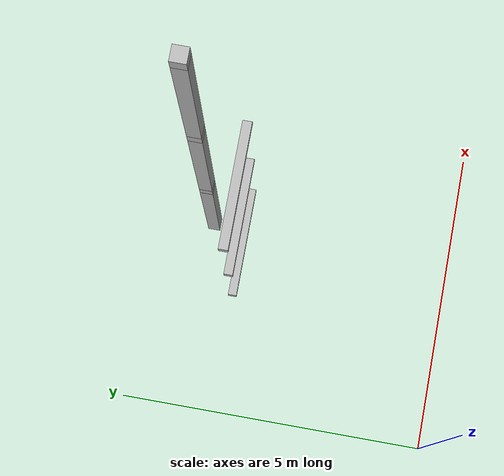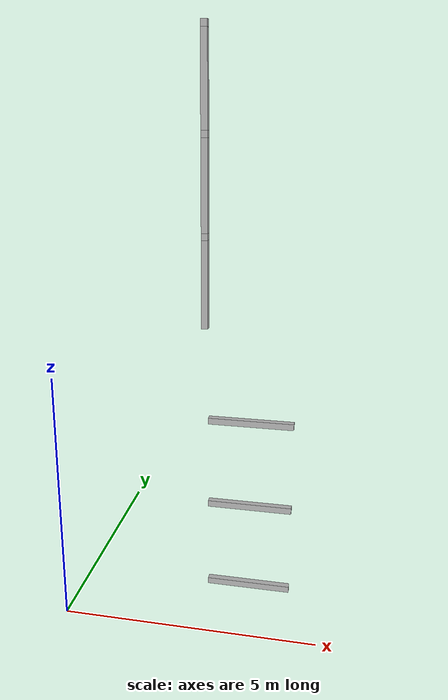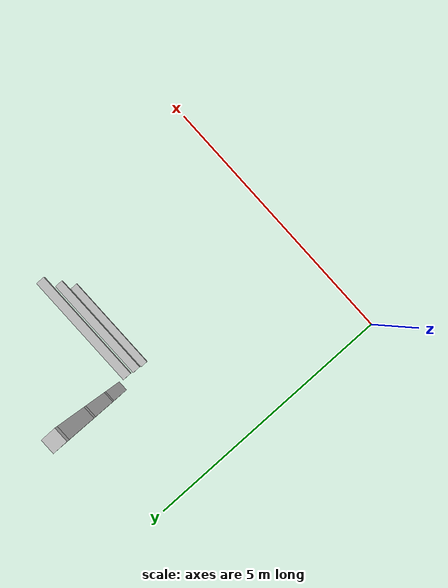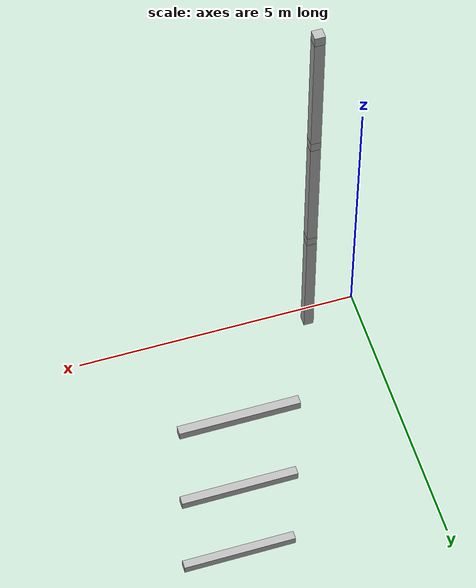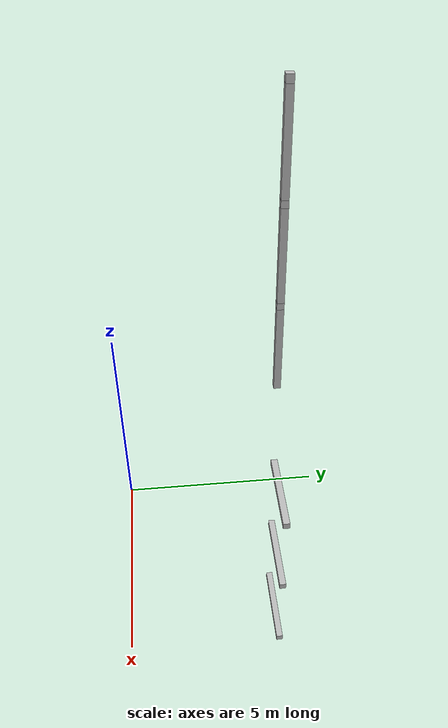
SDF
<sdf version="1.7">
 <world name="default">
  <model name="orthogonal_747_2.000.15_TS">
   <static>1</static>
   <link name="x_link_0_4_4">
    <inertial>
     <mass>1</mass>
     <inertia>
      <ixx>0.166667</ixx>
      <ixy>0</ixy>
      <ixz>0</ixz>
      <iyy>0.166667</iyy>
      <iyz>0</iyz>
      <izz>0.166667</izz>
     </inertia>
    </inertial>
    <pose>9.675 8.6 1.075 0 -0 0</pose>
    <visual name="visual_0">
     <laser_retro>701</laser_retro>
     <geometry><box><size>2 1e-06 0.15</size></box></geometry>
     <material>
      <script><name>Gazebo/Grey</name><uri>file://media/materials/scripts/gazebo.material</uri></script>
      <shader type="pixel"><normal_map>__default__</normal_map></shader>
      <ambient>0.678 0.498 0.659 1</ambient>
      <diffuse>0.7 0.7 0.7 1</diffuse>
      <specular>0.01 0.01 0.01 1</specular>
      <emissive>0 0 0 1</emissive>
     </material>
     <pose>0 -0.075 0 0 -0 0</pose>
     <transparency>1</transparency>
    </visual>
    <visual name="visual_1">
     <laser_retro>702</laser_retro>
     <geometry><box><size>2 1e-06 0.15</size></box></geometry>
     <material>
      <script><name>Gazebo/Grey</name><uri>file://media/materials/scripts/gazebo.material</uri></script>
      <shader type="pixel"><normal_map>__default__</normal_map></shader>
      <ambient>0.447 0.624 0.812 1</ambient>
      <diffuse>0.7 0.7 0.7 1</diffuse>
      <specular>0.01 0.01 0.01 1</specular>
      <emissive>0 0 0 1</emissive>
     </material>
     <pose>0 0.075 0 0 -0 0</pose>
     <transparency>1</transparency>
    </visual>
    <visual name="visual_2">
     <laser_retro>703</laser_retro>
     <geometry><box><size>2 0.15 1e-06</size></box></geometry>
     <material>
      <script><name>Gazebo/Grey</name><uri>file://media/materials/scripts/gazebo.material</uri></script>
      <shader type="pixel"><normal_map>__default__</normal_map></shader>
      <ambient>0.988 0.686 0.243 1</ambient>
      <diffuse>0.7 0.7 0.7 1</diffuse>
      <specular>0.01 0.01 0.01 1</specular>
      <emissive>0 0 0 1</emissive>
     </material>
     <pose>0 0 -0.075 0 -0 0</pose>
     <transparency>1</transparency>
    </visual>
    <visual name="visual_3">
     <laser_retro>704</laser_retro>
     <geometry><box><size>1e-06 0.15 0.15</size></box></geometry>
     <material>
      <script><name>Gazebo/Grey</name><uri>file://media/materials/scripts/gazebo.material</uri></script>
      <shader type="pixel"><normal_map>__default__</normal_map></shader>
      <ambient>0.988 0.914 0.31 1</ambient>
      <diffuse>0.7 0.7 0.7 1</diffuse>
      <specular>0.01 0.01 0.01 1</specular>
      <emissive>0 0 0 1</emissive>
     </material>
     <pose>1 0 0 0 -0 0</pose>
     <transparency>1</transparency>
    </visual>
    <visual name="visual_4">
     <laser_retro>705</laser_retro>
     <geometry><box><size>2 0.15 1e-06</size></box></geometry>
     <material>
      <script><name>Gazebo/Grey</name><uri>file://media/materials/scripts/gazebo.material</uri></script>
      <shader type="pixel"><normal_map>__default__</normal_map></shader>
      <ambient>0.937 0.161 0.161 1</ambient>
      <diffuse>0.7 0.7 0.7 1</diffuse>
      <specular>0.01 0.01 0.01 1</specular>
      <emissive>0 0 0 1</emissive>
     </material>
     <pose>0 0 0.075 0 -0 0</pose>
     <transparency>1</transparency>
    </visual>
    <visual name="visual_5">
     <laser_retro>706</laser_retro>
     <geometry><box><size>1e-06 0.15 0.15</size></box></geometry>
     <material>
      <script><name>Gazebo/Grey</name><uri>file://media/materials/scripts/gazebo.material</uri></script>
      <shader type="pixel"><normal_map>__default__</normal_map></shader>
      <ambient>0.541 0.886 0.204 1</ambient>
      <diffuse>0.7 0.7 0.7 1</diffuse>
      <specular>0.01 0.01 0.01 1</specular>
      <emissive>0 0 0 1</emissive>
     </material>
     <pose>-1 0 0 0 -0 0</pose>
     <transparency>1</transparency>
    </visual>
    <visual name="visual_texture">
     <geometry><box><size>1.9998 0.149985 0.149985</size></box></geometry>
     <material>
      <script>
       <uri>model://BASE_MODELS/simple_block_v2_textured/materials/scripts</uri>
       <uri>model://BASE_MODELS/simple_block_v2_textured/materials/textures</uri>
       <name>metal</name>
      </script>
     </material>
     <laser_retro>707</laser_retro>
    </visual>
    <collision name="collision">
     <geometry><box><size>2 0.15 0.15</size></box></geometry>
     <surface>
      <friction>
       <ode><mu>1</mu><mu2>1</mu2><fdir1>0 0 0</fdir1><slip1>0</slip1><slip2>0</slip2></ode>
       <torsional>
        <coefficient>1</coefficient>
        <patch_radius>0</patch_radius>
        <surface_radius>0</surface_radius>
        <use_patch_radius>1</use_patch_radius>
        <ode><slip>0</slip></ode>
       </torsional>
      </friction>
      <bounce><restitution_coefficient>0</restitution_coefficient><threshold>1e+06</threshold></bounce>
      <contact>
       <collide_without_contact>0</collide_without_contact>
       <collide_without_contact_bitmask>1</collide_without_contact_bitmask>
       <collide_bitmask>1</collide_bitmask>
       <ode>
        <soft_cfm>0</soft_cfm>
        <soft_erp>0.2</soft_erp>
        <kp>1e+13</kp>
        <kd>1</kd>
        <max_vel>0.01</max_vel>
        <min_depth>0</min_depth>
       </ode>
       <bullet>
        <split_impulse>1</split_impulse>
        <split_impulse_penetration_threshold>-0.01</split_impulse_penetration_threshold>
        <soft_cfm>0</soft_cfm>
        <soft_erp>0.2</soft_erp>
        <kp>1e+13</kp>
        <kd>1</kd>
       </bullet>
      </contact>
     </surface>
    </collision>
   </link>
   <link name="x_link_1_4_4">
    <inertial>
     <mass>1</mass>
     <inertia>
      <ixx>0.166667</ixx>
      <ixy>0</ixy>
      <ixz>0</ixz>
      <iyy>0.166667</iyy>
      <iyz>0</iyz>
      <izz>0.166667</izz>
     </inertia>
    </inertial>
    <pose>9.675 8.6 3.225 0 -0 0</pose>
    <visual name="visual_0">
     <laser_retro>1576</laser_retro>
     <geometry><box><size>2 1e-06 0.15</size></box></geometry>
     <material>
      <script><name>Gazebo/Grey</name><uri>file://media/materials/scripts/gazebo.material</uri></script>
      <shader type="pixel"><normal_map>__default__</normal_map></shader>
      <ambient>0.678 0.498 0.659 1</ambient>
      <diffuse>0.7 0.7 0.7 1</diffuse>
      <specular>0.01 0.01 0.01 1</specular>
      <emissive>0 0 0 1</emissive>
     </material>
     <pose>0 -0.075 0 0 -0 0</pose>
     <transparency>1</transparency>
    </visual>
    <visual name="visual_1">
     <laser_retro>1577</laser_retro>
     <geometry><box><size>2 1e-06 0.15</size></box></geometry>
     <material>
      <script><name>Gazebo/Grey</name><uri>file://media/materials/scripts/gazebo.material</uri></script>
      <shader type="pixel"><normal_map>__default__</normal_map></shader>
      <ambient>0.447 0.624 0.812 1</ambient>
      <diffuse>0.7 0.7 0.7 1</diffuse>
      <specular>0.01 0.01 0.01 1</specular>
      <emissive>0 0 0 1</emissive>
     </material>
     <pose>0 0.075 0 0 -0 0</pose>
     <transparency>1</transparency>
    </visual>
    <visual name="visual_2">
     <laser_retro>1578</laser_retro>
     <geometry><box><size>2 0.15 1e-06</size></box></geometry>
     <material>
      <script><name>Gazebo/Grey</name><uri>file://media/materials/scripts/gazebo.material</uri></script>
      <shader type="pixel"><normal_map>__default__</normal_map></shader>
      <ambient>0.988 0.686 0.243 1</ambient>
      <diffuse>0.7 0.7 0.7 1</diffuse>
      <specular>0.01 0.01 0.01 1</specular>
      <emissive>0 0 0 1</emissive>
     </material>
     <pose>0 0 -0.075 0 -0 0</pose>
     <transparency>1</transparency>
    </visual>
    <visual name="visual_3">
     <laser_retro>1579</laser_retro>
     <geometry><box><size>1e-06 0.15 0.15</size></box></geometry>
     <material>
      <script><name>Gazebo/Grey</name><uri>file://media/materials/scripts/gazebo.material</uri></script>
      <shader type="pixel"><normal_map>__default__</normal_map></shader>
      <ambient>0.988 0.914 0.31 1</ambient>
      <diffuse>0.7 0.7 0.7 1</diffuse>
      <specular>0.01 0.01 0.01 1</specular>
      <emissive>0 0 0 1</emissive>
     </material>
     <pose>1 0 0 0 -0 0</pose>
     <transparency>1</transparency>
    </visual>
    <visual name="visual_4">
     <laser_retro>1580</laser_retro>
     <geometry><box><size>2 0.15 1e-06</size></box></geometry>
     <material>
      <script><name>Gazebo/Grey</name><uri>file://media/materials/scripts/gazebo.material</uri></script>
      <shader type="pixel"><normal_map>__default__</normal_map></shader>
      <ambient>0.937 0.161 0.161 1</ambient>
      <diffuse>0.7 0.7 0.7 1</diffuse>
      <specular>0.01 0.01 0.01 1</specular>
      <emissive>0 0 0 1</emissive>
     </material>
     <pose>0 0 0.075 0 -0 0</pose>
     <transparency>1</transparency>
    </visual>
    <visual name="visual_5">
     <laser_retro>1581</laser_retro>
     <geometry><box><size>1e-06 0.15 0.15</size></box></geometry>
     <material>
      <script><name>Gazebo/Grey</name><uri>file://media/materials/scripts/gazebo.material</uri></script>
      <shader type="pixel"><normal_map>__default__</normal_map></shader>
      <ambient>0.541 0.886 0.204 1</ambient>
      <diffuse>0.7 0.7 0.7 1</diffuse>
      <specular>0.01 0.01 0.01 1</specular>
      <emissive>0 0 0 1</emissive>
     </material>
     <pose>-1 0 0 0 -0 0</pose>
     <transparency>1</transparency>
    </visual>
    <visual name="visual_texture">
     <geometry><box><size>1.9998 0.149985 0.149985</size></box></geometry>
     <material>
      <script>
       <uri>model://BASE_MODELS/simple_block_v2_textured/materials/scripts</uri>
       <uri>model://BASE_MODELS/simple_block_v2_textured/materials/textures</uri>
       <name>metal</name>
      </script>
     </material>
     <laser_retro>1582</laser_retro>
    </visual>
    <collision name="collision">
     <geometry><box><size>2 0.15 0.15</size></box></geometry>
     <surface>
      <friction>
       <ode><mu>1</mu><mu2>1</mu2><fdir1>0 0 0</fdir1><slip1>0</slip1><slip2>0</slip2></ode>
       <torsional>
        <coefficient>1</coefficient>
        <patch_radius>0</patch_radius>
        <surface_radius>0</surface_radius>
        <use_patch_radius>1</use_patch_radius>
        <ode><slip>0</slip></ode>
       </torsional>
      </friction>
      <bounce><restitution_coefficient>0</restitution_coefficient><threshold>1e+06</threshold></bounce>
      <contact>
       <collide_without_contact>0</collide_without_contact>
       <collide_without_contact_bitmask>1</collide_without_contact_bitmask>
       <collide_bitmask>1</collide_bitmask>
       <ode>
        <soft_cfm>0</soft_cfm>
        <soft_erp>0.2</soft_erp>
        <kp>1e+13</kp>
        <kd>1</kd>
        <max_vel>0.01</max_vel>
        <min_depth>0</min_depth>
       </ode>
       <bullet>
        <split_impulse>1</split_impulse>
        <split_impulse_penetration_threshold>-0.01</split_impulse_penetration_threshold>
        <soft_cfm>0</soft_cfm>
        <soft_erp>0.2</soft_erp>
        <kp>1e+13</kp>
        <kd>1</kd>
       </bullet>
      </contact>
     </surface>
    </collision>
   </link>
   <link name="x_link_2_4_4">
    <inertial>
     <mass>1</mass>
     <inertia>
      <ixx>0.166667</ixx>
      <ixy>0</ixy>
      <ixz>0</ixz>
      <iyy>0.166667</iyy>
      <iyz>0</iyz>
      <izz>0.166667</izz>
     </inertia>
    </inertial>
    <pose>9.675 8.6 5.375 0 -0 0</pose>
    <visual name="visual_0">
     <laser_retro>2479</laser_retro>
     <geometry><box><size>2 1e-06 0.15</size></box></geometry>
     <material>
      <script><name>Gazebo/Grey</name><uri>file://media/materials/scripts/gazebo.material</uri></script>
      <shader type="pixel"><normal_map>__default__</normal_map></shader>
      <ambient>0.678 0.498 0.659 1</ambient>
      <diffuse>0.7 0.7 0.7 1</diffuse>
      <specular>0.01 0.01 0.01 1</specular>
      <emissive>0 0 0 1</emissive>
     </material>
     <pose>0 -0.075 0 0 -0 0</pose>
     <transparency>1</transparency>
    </visual>
    <visual name="visual_1">
     <laser_retro>2480</laser_retro>
     <geometry><box><size>2 1e-06 0.15</size></box></geometry>
     <material>
      <script><name>Gazebo/Grey</name><uri>file://media/materials/scripts/gazebo.material</uri></script>
      <shader type="pixel"><normal_map>__default__</normal_map></shader>
      <ambient>0.447 0.624 0.812 1</ambient>
      <diffuse>0.7 0.7 0.7 1</diffuse>
      <specular>0.01 0.01 0.01 1</specular>
      <emissive>0 0 0 1</emissive>
     </material>
     <pose>0 0.075 0 0 -0 0</pose>
     <transparency>1</transparency>
    </visual>
    <visual name="visual_2">
     <laser_retro>2481</laser_retro>
     <geometry><box><size>2 0.15 1e-06</size></box></geometry>
     <material>
      <script><name>Gazebo/Grey</name><uri>file://media/materials/scripts/gazebo.material</uri></script>
      <shader type="pixel"><normal_map>__default__</normal_map></shader>
      <ambient>0.988 0.686 0.243 1</ambient>
      <diffuse>0.7 0.7 0.7 1</diffuse>
      <specular>0.01 0.01 0.01 1</specular>
      <emissive>0 0 0 1</emissive>
     </material>
     <pose>0 0 -0.075 0 -0 0</pose>
     <transparency>1</transparency>
    </visual>
    <visual name="visual_3">
     <laser_retro>2482</laser_retro>
     <geometry><box><size>1e-06 0.15 0.15</size></box></geometry>
     <material>
      <script><name>Gazebo/Grey</name><uri>file://media/materials/scripts/gazebo.material</uri></script>
      <shader type="pixel"><normal_map>__default__</normal_map></shader>
      <ambient>0.988 0.914 0.31 1</ambient>
      <diffuse>0.7 0.7 0.7 1</diffuse>
      <specular>0.01 0.01 0.01 1</specular>
      <emissive>0 0 0 1</emissive>
     </material>
     <pose>1 0 0 0 -0 0</pose>
     <transparency>1</transparency>
    </visual>
    <visual name="visual_4">
     <laser_retro>2483</laser_retro>
     <geometry><box><size>2 0.15 1e-06</size></box></geometry>
     <material>
      <script><name>Gazebo/Grey</name><uri>file://media/materials/scripts/gazebo.material</uri></script>
      <shader type="pixel"><normal_map>__default__</normal_map></shader>
      <ambient>0.937 0.161 0.161 1</ambient>
      <diffuse>0.7 0.7 0.7 1</diffuse>
      <specular>0.01 0.01 0.01 1</specular>
      <emissive>0 0 0 1</emissive>
     </material>
     <pose>0 0 0.075 0 -0 0</pose>
     <transparency>1</transparency>
    </visual>
    <visual name="visual_5">
     <laser_retro>2484</laser_retro>
     <geometry><box><size>1e-06 0.15 0.15</size></box></geometry>
     <material>
      <script><name>Gazebo/Grey</name><uri>file://media/materials/scripts/gazebo.material</uri></script>
      <shader type="pixel"><normal_map>__default__</normal_map></shader>
      <ambient>0.541 0.886 0.204 1</ambient>
      <diffuse>0.7 0.7 0.7 1</diffuse>
      <specular>0.01 0.01 0.01 1</specular>
      <emissive>0 0 0 1</emissive>
     </material>
     <pose>-1 0 0 0 -0 0</pose>
     <transparency>1</transparency>
    </visual>
    <visual name="visual_texture">
     <geometry><box><size>1.9998 0.149985 0.149985</size></box></geometry>
     <material>
      <script>
       <uri>model://BASE_MODELS/simple_block_v2_textured/materials/scripts</uri>
       <uri>model://BASE_MODELS/simple_block_v2_textured/materials/textures</uri>
       <name>metal</name>
      </script>
     </material>
     <laser_retro>2485</laser_retro>
    </visual>
    <collision name="collision">
     <geometry><box><size>2 0.15 0.15</size></box></geometry>
     <surface>
      <friction>
       <ode><mu>1</mu><mu2>1</mu2><fdir1>0 0 0</fdir1><slip1>0</slip1><slip2>0</slip2></ode>
       <torsional>
        <coefficient>1</coefficient>
        <patch_radius>0</patch_radius>
        <surface_radius>0</surface_radius>
        <use_patch_radius>1</use_patch_radius>
        <ode><slip>0</slip></ode>
       </torsional>
      </friction>
      <bounce><restitution_coefficient>0</restitution_coefficient><threshold>1e+06</threshold></bounce>
      <contact>
       <collide_without_contact>0</collide_without_contact>
       <collide_without_contact_bitmask>1</collide_without_contact_bitmask>
       <collide_bitmask>1</collide_bitmask>
       <ode>
        <soft_cfm>0</soft_cfm>
        <soft_erp>0.2</soft_erp>
        <kp>1e+13</kp>
        <kd>1</kd>
        <max_vel>0.01</max_vel>
        <min_depth>0</min_depth>
       </ode>
       <bullet>
        <split_impulse>1</split_impulse>
        <split_impulse_penetration_threshold>-0.01</split_impulse_penetration_threshold>
        <soft_cfm>0</soft_cfm>
        <soft_erp>0.2</soft_erp>
        <kp>1e+13</kp>
        <kd>1</kd>
       </bullet>
      </contact>
     </surface>
    </collision>
   </link>
   <link name="u_link_4_4_4">
    <inertial>
     <mass>1</mass>
     <inertia>
      <ixx>0.166667</ixx>
      <ixy>0</ixy>
      <ixz>0</ixz>
      <iyy>0.166667</iyy>
      <iyz>0</iyz>
      <izz>0.166667</izz>
     </inertia>
    </inertial>
    <pose>8.6 8.6 9.675 0 -0 0</pose>
    <visual name="visual_0">
     <laser_retro>4292</laser_retro>
     <geometry><box><size>0.15 1e-06 0.15</size></box></geometry>
     <material>
      <script><name>Gazebo/Grey</name><uri>file://media/materials/scripts/gazebo.material</uri></script>
      <shader type="pixel"><normal_map>__default__</normal_map></shader>
      <ambient>0.678 0.498 0.659 1</ambient>
      <diffuse>0.7 0.7 0.7 1</diffuse>
      <specular>0.01 0.01 0.01 1</specular>
      <emissive>0 0 0 1</emissive>
     </material>
     <pose>0 -0.075 0 0 -0 0</pose>
     <transparency>1</transparency>
    </visual>
    <visual name="visual_1">
     <laser_retro>4293</laser_retro>
     <geometry><box><size>0.15 1e-06 0.15</size></box></geometry>
     <material>
      <script><name>Gazebo/Grey</name><uri>file://media/materials/scripts/gazebo.material</uri></script>
      <shader type="pixel"><normal_map>__default__</normal_map></shader>
      <ambient>0.447 0.624 0.812 1</ambient>
      <diffuse>0.7 0.7 0.7 1</diffuse>
      <specular>0.01 0.01 0.01 1</specular>
      <emissive>0 0 0 1</emissive>
     </material>
     <pose>0 0.075 0 0 -0 0</pose>
     <transparency>1</transparency>
    </visual>
    <visual name="visual_2">
     <laser_retro>4294</laser_retro>
     <geometry><box><size>0.15 0.15 1e-06</size></box></geometry>
     <material>
      <script><name>Gazebo/Grey</name><uri>file://media/materials/scripts/gazebo.material</uri></script>
      <shader type="pixel"><normal_map>__default__</normal_map></shader>
      <ambient>0.988 0.686 0.243 1</ambient>
      <diffuse>0.7 0.7 0.7 1</diffuse>
      <specular>0.01 0.01 0.01 1</specular>
      <emissive>0 0 0 1</emissive>
     </material>
     <pose>0 0 -0.075 0 -0 0</pose>
     <transparency>1</transparency>
    </visual>
    <visual name="visual_3">
     <laser_retro>4295</laser_retro>
     <geometry><box><size>1e-06 0.15 0.15</size></box></geometry>
     <material>
      <script><name>Gazebo/Grey</name><uri>file://media/materials/scripts/gazebo.material</uri></script>
      <shader type="pixel"><normal_map>__default__</normal_map></shader>
      <ambient>0.988 0.914 0.31 1</ambient>
      <diffuse>0.7 0.7 0.7 1</diffuse>
      <specular>0.01 0.01 0.01 1</specular>
      <emissive>0 0 0 1</emissive>
     </material>
     <pose>0.075 0 0 0 -0 0</pose>
     <transparency>1</transparency>
    </visual>
    <visual name="visual_4">
     <laser_retro>4296</laser_retro>
     <geometry><box><size>0.15 0.15 1e-06</size></box></geometry>
     <material>
      <script><name>Gazebo/Grey</name><uri>file://media/materials/scripts/gazebo.material</uri></script>
      <shader type="pixel"><normal_map>__default__</normal_map></shader>
      <ambient>0.937 0.161 0.161 1</ambient>
      <diffuse>0.7 0.7 0.7 1</diffuse>
      <specular>0.01 0.01 0.01 1</specular>
      <emissive>0 0 0 1</emissive>
     </material>
     <pose>0 0 0.075 0 -0 0</pose>
     <transparency>1</transparency>
    </visual>
    <visual name="visual_5">
     <laser_retro>4297</laser_retro>
     <geometry><box><size>1e-06 0.15 0.15</size></box></geometry>
     <material>
      <script><name>Gazebo/Grey</name><uri>file://media/materials/scripts/gazebo.material</uri></script>
      <shader type="pixel"><normal_map>__default__</normal_map></shader>
      <ambient>0.541 0.886 0.204 1</ambient>
      <diffuse>0.7 0.7 0.7 1</diffuse>
      <specular>0.01 0.01 0.01 1</specular>
      <emissive>0 0 0 1</emissive>
     </material>
     <pose>-0.075 0 0 0 -0 0</pose>
     <transparency>1</transparency>
    </visual>
    <visual name="visual_texture">
     <geometry><box><size>0.149985 0.149985 0.149985</size></box></geometry>
     <material>
      <script>
       <uri>model://BASE_MODELS/simple_block_v2_textured/materials/scripts</uri>
       <uri>model://BASE_MODELS/simple_block_v2_textured/materials/textures</uri>
       <name>metal</name>
      </script>
     </material>
     <laser_retro>4298</laser_retro>
    </visual>
    <collision name="collision">
     <geometry><box><size>0.15 0.15 0.15</size></box></geometry>
     <surface>
      <friction>
       <ode><mu>1</mu><mu2>1</mu2><fdir1>0 0 0</fdir1><slip1>0</slip1><slip2>0</slip2></ode>
       <torsional>
        <coefficient>1</coefficient>
        <patch_radius>0</patch_radius>
        <surface_radius>0</surface_radius>
        <use_patch_radius>1</use_patch_radius>
        <ode><slip>0</slip></ode>
       </torsional>
      </friction>
      <bounce><restitution_coefficient>0</restitution_coefficient><threshold>1e+06</threshold></bounce>
      <contact>
       <collide_without_contact>0</collide_without_contact>
       <collide_without_contact_bitmask>1</collide_without_contact_bitmask>
       <collide_bitmask>1</collide_bitmask>
       <ode>
        <soft_cfm>0</soft_cfm>
        <soft_erp>0.2</soft_erp>
        <kp>1e+13</kp>
        <kd>1</kd>
        <max_vel>0.01</max_vel>
        <min_depth>0</min_depth>
       </ode>
       <bullet>
        <split_impulse>1</split_impulse>
        <split_impulse_penetration_threshold>-0.01</split_impulse_penetration_threshold>
        <soft_cfm>0</soft_cfm>
        <soft_erp>0.2</soft_erp>
        <kp>1e+13</kp>
        <kd>1</kd>
       </bullet>
      </contact>
     </surface>
    </collision>
   </link>
   <link name="z_link_4_4_4">
    <inertial>
     <mass>1</mass>
     <inertia>
      <ixx>0.166667</ixx>
      <ixy>0</ixy>
      <ixz>0</ixz>
      <iyy>0.166667</iyy>
      <iyz>0</iyz>
      <izz>0.166667</izz>
     </inertia>
    </inertial>
    <pose>8.6 8.6 8.6 0 -0 0</pose>
    <visual name="visual_0">
     <laser_retro>4299</laser_retro>
     <geometry><box><size>0.15 1e-06 2</size></box></geometry>
     <material>
      <script><name>Gazebo/Grey</name><uri>file://media/materials/scripts/gazebo.material</uri></script>
      <shader type="pixel"><normal_map>__default__</normal_map></shader>
      <ambient>0.678 0.498 0.659 1</ambient>
      <diffuse>0.7 0.7 0.7 1</diffuse>
      <specular>0.01 0.01 0.01 1</specular>
      <emissive>0 0 0 1</emissive>
     </material>
     <pose>0 -0.075 0 0 -0 0</pose>
     <transparency>1</transparency>
    </visual>
    <visual name="visual_1">
     <laser_retro>4300</laser_retro>
     <geometry><box><size>0.15 1e-06 2</size></box></geometry>
     <material>
      <script><name>Gazebo/Grey</name><uri>file://media/materials/scripts/gazebo.material</uri></script>
      <shader type="pixel"><normal_map>__default__</normal_map></shader>
      <ambient>0.447 0.624 0.812 1</ambient>
      <diffuse>0.7 0.7 0.7 1</diffuse>
      <specular>0.01 0.01 0.01 1</specular>
      <emissive>0 0 0 1</emissive>
     </material>
     <pose>0 0.075 0 0 -0 0</pose>
     <transparency>1</transparency>
    </visual>
    <visual name="visual_2">
     <laser_retro>4301</laser_retro>
     <geometry><box><size>0.15 0.15 1e-06</size></box></geometry>
     <material>
      <script><name>Gazebo/Grey</name><uri>file://media/materials/scripts/gazebo.material</uri></script>
      <shader type="pixel"><normal_map>__default__</normal_map></shader>
      <ambient>0.988 0.686 0.243 1</ambient>
      <diffuse>0.7 0.7 0.7 1</diffuse>
      <specular>0.01 0.01 0.01 1</specular>
      <emissive>0 0 0 1</emissive>
     </material>
     <pose>0 0 -1 0 -0 0</pose>
     <transparency>1</transparency>
    </visual>
    <visual name="visual_3">
     <laser_retro>4302</laser_retro>
     <geometry><box><size>1e-06 0.15 2</size></box></geometry>
     <material>
      <script><name>Gazebo/Grey</name><uri>file://media/materials/scripts/gazebo.material</uri></script>
      <shader type="pixel"><normal_map>__default__</normal_map></shader>
      <ambient>0.988 0.914 0.31 1</ambient>
      <diffuse>0.7 0.7 0.7 1</diffuse>
      <specular>0.01 0.01 0.01 1</specular>
      <emissive>0 0 0 1</emissive>
     </material>
     <pose>0.075 0 0 0 -0 0</pose>
     <transparency>1</transparency>
    </visual>
    <visual name="visual_4">
     <laser_retro>4303</laser_retro>
     <geometry><box><size>0.15 0.15 1e-06</size></box></geometry>
     <material>
      <script><name>Gazebo/Grey</name><uri>file://media/materials/scripts/gazebo.material</uri></script>
      <shader type="pixel"><normal_map>__default__</normal_map></shader>
      <ambient>0.937 0.161 0.161 1</ambient>
      <diffuse>0.7 0.7 0.7 1</diffuse>
      <specular>0.01 0.01 0.01 1</specular>
      <emissive>0 0 0 1</emissive>
     </material>
     <pose>0 0 1 0 -0 0</pose>
     <transparency>1</transparency>
    </visual>
    <visual name="visual_5">
     <laser_retro>4304</laser_retro>
     <geometry><box><size>1e-06 0.15 2</size></box></geometry>
     <material>
      <script><name>Gazebo/Grey</name><uri>file://media/materials/scripts/gazebo.material</uri></script>
      <shader type="pixel"><normal_map>__default__</normal_map></shader>
      <ambient>0.541 0.886 0.204 1</ambient>
      <diffuse>0.7 0.7 0.7 1</diffuse>
      <specular>0.01 0.01 0.01 1</specular>
      <emissive>0 0 0 1</emissive>
     </material>
     <pose>-0.075 0 0 0 -0 0</pose>
     <transparency>1</transparency>
    </visual>
    <visual name="visual_texture">
     <geometry><box><size>0.149985 0.149985 1.9998</size></box></geometry>
     <material>
      <script>
       <uri>model://BASE_MODELS/simple_block_v2_textured/materials/scripts</uri>
       <uri>model://BASE_MODELS/simple_block_v2_textured/materials/textures</uri>
       <name>metal</name>
      </script>
     </material>
     <laser_retro>4305</laser_retro>
    </visual>
    <collision name="collision">
     <geometry><box><size>0.15 0.15 2</size></box></geometry>
     <surface>
      <friction>
       <ode><mu>1</mu><mu2>1</mu2><fdir1>0 0 0</fdir1><slip1>0</slip1><slip2>0</slip2></ode>
       <torsional>
        <coefficient>1</coefficient>
        <patch_radius>0</patch_radius>
        <surface_radius>0</surface_radius>
        <use_patch_radius>1</use_patch_radius>
        <ode><slip>0</slip></ode>
       </torsional>
      </friction>
      <bounce><restitution_coefficient>0</restitution_coefficient><threshold>1e+06</threshold></bounce>
      <contact>
       <collide_without_contact>0</collide_without_contact>
       <collide_without_contact_bitmask>1</collide_without_contact_bitmask>
       <collide_bitmask>1</collide_bitmask>
       <ode>
        <soft_cfm>0</soft_cfm>
        <soft_erp>0.2</soft_erp>
        <kp>1e+13</kp>
        <kd>1</kd>
        <max_vel>0.01</max_vel>
        <min_depth>0</min_depth>
       </ode>
       <bullet>
        <split_impulse>1</split_impulse>
        <split_impulse_penetration_threshold>-0.01</split_impulse_penetration_threshold>
        <soft_cfm>0</soft_cfm>
        <soft_erp>0.2</soft_erp>
        <kp>1e+13</kp>
        <kd>1</kd>
       </bullet>
      </contact>
     </surface>
    </collision>
   </link>
   <link name="u_link_5_4_4">
    <inertial>
     <mass>1</mass>
     <inertia>
      <ixx>0.166667</ixx>
      <ixy>0</ixy>
      <ixz>0</ixz>
      <iyy>0.166667</iyy>
      <iyz>0</iyz>
      <izz>0.166667</izz>
     </inertia>
    </inertial>
    <pose>8.6 8.6 11.825 0 -0 0</pose>
    <visual name="visual_0">
     <laser_retro>5195</laser_retro>
     <geometry><box><size>0.15 1e-06 0.15</size></box></geometry>
     <material>
      <script><name>Gazebo/Grey</name><uri>file://media/materials/scripts/gazebo.material</uri></script>
      <shader type="pixel"><normal_map>__default__</normal_map></shader>
      <ambient>0.678 0.498 0.659 1</ambient>
      <diffuse>0.7 0.7 0.7 1</diffuse>
      <specular>0.01 0.01 0.01 1</specular>
      <emissive>0 0 0 1</emissive>
     </material>
     <pose>0 -0.075 0 0 -0 0</pose>
     <transparency>1</transparency>
    </visual>
    <visual name="visual_1">
     <laser_retro>5196</laser_retro>
     <geometry><box><size>0.15 1e-06 0.15</size></box></geometry>
     <material>
      <script><name>Gazebo/Grey</name><uri>file://media/materials/scripts/gazebo.material</uri></script>
      <shader type="pixel"><normal_map>__default__</normal_map></shader>
      <ambient>0.447 0.624 0.812 1</ambient>
      <diffuse>0.7 0.7 0.7 1</diffuse>
      <specular>0.01 0.01 0.01 1</specular>
      <emissive>0 0 0 1</emissive>
     </material>
     <pose>0 0.075 0 0 -0 0</pose>
     <transparency>1</transparency>
    </visual>
    <visual name="visual_2">
     <laser_retro>5197</laser_retro>
     <geometry><box><size>0.15 0.15 1e-06</size></box></geometry>
     <material>
      <script><name>Gazebo/Grey</name><uri>file://media/materials/scripts/gazebo.material</uri></script>
      <shader type="pixel"><normal_map>__default__</normal_map></shader>
      <ambient>0.988 0.686 0.243 1</ambient>
      <diffuse>0.7 0.7 0.7 1</diffuse>
      <specular>0.01 0.01 0.01 1</specular>
      <emissive>0 0 0 1</emissive>
     </material>
     <pose>0 0 -0.075 0 -0 0</pose>
     <transparency>1</transparency>
    </visual>
    <visual name="visual_3">
     <laser_retro>5198</laser_retro>
     <geometry><box><size>1e-06 0.15 0.15</size></box></geometry>
     <material>
      <script><name>Gazebo/Grey</name><uri>file://media/materials/scripts/gazebo.material</uri></script>
      <shader type="pixel"><normal_map>__default__</normal_map></shader>
      <ambient>0.988 0.914 0.31 1</ambient>
      <diffuse>0.7 0.7 0.7 1</diffuse>
      <specular>0.01 0.01 0.01 1</specular>
      <emissive>0 0 0 1</emissive>
     </material>
     <pose>0.075 0 0 0 -0 0</pose>
     <transparency>1</transparency>
    </visual>
    <visual name="visual_4">
     <laser_retro>5199</laser_retro>
     <geometry><box><size>0.15 0.15 1e-06</size></box></geometry>
     <material>
      <script><name>Gazebo/Grey</name><uri>file://media/materials/scripts/gazebo.material</uri></script>
      <shader type="pixel"><normal_map>__default__</normal_map></shader>
      <ambient>0.937 0.161 0.161 1</ambient>
      <diffuse>0.7 0.7 0.7 1</diffuse>
      <specular>0.01 0.01 0.01 1</specular>
      <emissive>0 0 0 1</emissive>
     </material>
     <pose>0 0 0.075 0 -0 0</pose>
     <transparency>1</transparency>
    </visual>
    <visual name="visual_5">
     <laser_retro>5200</laser_retro>
     <geometry><box><size>1e-06 0.15 0.15</size></box></geometry>
     <material>
      <script><name>Gazebo/Grey</name><uri>file://media/materials/scripts/gazebo.material</uri></script>
      <shader type="pixel"><normal_map>__default__</normal_map></shader>
      <ambient>0.541 0.886 0.204 1</ambient>
      <diffuse>0.7 0.7 0.7 1</diffuse>
      <specular>0.01 0.01 0.01 1</specular>
      <emissive>0 0 0 1</emissive>
     </material>
     <pose>-0.075 0 0 0 -0 0</pose>
     <transparency>1</transparency>
    </visual>
    <visual name="visual_texture">
     <geometry><box><size>0.149985 0.149985 0.149985</size></box></geometry>
     <material>
      <script>
       <uri>model://BASE_MODELS/simple_block_v2_textured/materials/scripts</uri>
       <uri>model://BASE_MODELS/simple_block_v2_textured/materials/textures</uri>
       <name>metal</name>
      </script>
     </material>
     <laser_retro>5201</laser_retro>
    </visual>
    <collision name="collision">
     <geometry><box><size>0.15 0.15 0.15</size></box></geometry>
     <surface>
      <friction>
       <ode><mu>1</mu><mu2>1</mu2><fdir1>0 0 0</fdir1><slip1>0</slip1><slip2>0</slip2></ode>
       <torsional>
        <coefficient>1</coefficient>
        <patch_radius>0</patch_radius>
        <surface_radius>0</surface_radius>
        <use_patch_radius>1</use_patch_radius>
        <ode><slip>0</slip></ode>
       </torsional>
      </friction>
      <bounce><restitution_coefficient>0</restitution_coefficient><threshold>1e+06</threshold></bounce>
      <contact>
       <collide_without_contact>0</collide_without_contact>
       <collide_without_contact_bitmask>1</collide_without_contact_bitmask>
       <collide_bitmask>1</collide_bitmask>
       <ode>
        <soft_cfm>0</soft_cfm>
        <soft_erp>0.2</soft_erp>
        <kp>1e+13</kp>
        <kd>1</kd>
        <max_vel>0.01</max_vel>
        <min_depth>0</min_depth>
       </ode>
       <bullet>
        <split_impulse>1</split_impulse>
        <split_impulse_penetration_threshold>-0.01</split_impulse_penetration_threshold>
        <soft_cfm>0</soft_cfm>
        <soft_erp>0.2</soft_erp>
        <kp>1e+13</kp>
        <kd>1</kd>
       </bullet>
      </contact>
     </surface>
    </collision>
   </link>
   <link name="z_link_5_4_4">
    <inertial>
     <mass>1</mass>
     <inertia>
      <ixx>0.166667</ixx>
      <ixy>0</ixy>
      <ixz>0</ixz>
      <iyy>0.166667</iyy>
      <iyz>0</iyz>
      <izz>0.166667</izz>
     </inertia>
    </inertial>
    <pose>8.6 8.6 10.75 0 -0 0</pose>
    <visual name="visual_0">
     <laser_retro>5202</laser_retro>
     <geometry><box><size>0.15 1e-06 2</size></box></geometry>
     <material>
      <script><name>Gazebo/Grey</name><uri>file://media/materials/scripts/gazebo.material</uri></script>
      <shader type="pixel"><normal_map>__default__</normal_map></shader>
      <ambient>0.678 0.498 0.659 1</ambient>
      <diffuse>0.7 0.7 0.7 1</diffuse>
      <specular>0.01 0.01 0.01 1</specular>
      <emissive>0 0 0 1</emissive>
     </material>
     <pose>0 -0.075 0 0 -0 0</pose>
     <transparency>1</transparency>
    </visual>
    <visual name="visual_1">
     <laser_retro>5203</laser_retro>
     <geometry><box><size>0.15 1e-06 2</size></box></geometry>
     <material>
      <script><name>Gazebo/Grey</name><uri>file://media/materials/scripts/gazebo.material</uri></script>
      <shader type="pixel"><normal_map>__default__</normal_map></shader>
      <ambient>0.447 0.624 0.812 1</ambient>
      <diffuse>0.7 0.7 0.7 1</diffuse>
      <specular>0.01 0.01 0.01 1</specular>
      <emissive>0 0 0 1</emissive>
     </material>
     <pose>0 0.075 0 0 -0 0</pose>
     <transparency>1</transparency>
    </visual>
    <visual name="visual_2">
     <laser_retro>5204</laser_retro>
     <geometry><box><size>0.15 0.15 1e-06</size></box></geometry>
     <material>
      <script><name>Gazebo/Grey</name><uri>file://media/materials/scripts/gazebo.material</uri></script>
      <shader type="pixel"><normal_map>__default__</normal_map></shader>
      <ambient>0.988 0.686 0.243 1</ambient>
      <diffuse>0.7 0.7 0.7 1</diffuse>
      <specular>0.01 0.01 0.01 1</specular>
      <emissive>0 0 0 1</emissive>
     </material>
     <pose>0 0 -1 0 -0 0</pose>
     <transparency>1</transparency>
    </visual>
    <visual name="visual_3">
     <laser_retro>5205</laser_retro>
     <geometry><box><size>1e-06 0.15 2</size></box></geometry>
     <material>
      <script><name>Gazebo/Grey</name><uri>file://media/materials/scripts/gazebo.material</uri></script>
      <shader type="pixel"><normal_map>__default__</normal_map></shader>
      <ambient>0.988 0.914 0.31 1</ambient>
      <diffuse>0.7 0.7 0.7 1</diffuse>
      <specular>0.01 0.01 0.01 1</specular>
      <emissive>0 0 0 1</emissive>
     </material>
     <pose>0.075 0 0 0 -0 0</pose>
     <transparency>1</transparency>
    </visual>
    <visual name="visual_4">
     <laser_retro>5206</laser_retro>
     <geometry><box><size>0.15 0.15 1e-06</size></box></geometry>
     <material>
      <script><name>Gazebo/Grey</name><uri>file://media/materials/scripts/gazebo.material</uri></script>
      <shader type="pixel"><normal_map>__default__</normal_map></shader>
      <ambient>0.937 0.161 0.161 1</ambient>
      <diffuse>0.7 0.7 0.7 1</diffuse>
      <specular>0.01 0.01 0.01 1</specular>
      <emissive>0 0 0 1</emissive>
     </material>
     <pose>0 0 1 0 -0 0</pose>
     <transparency>1</transparency>
    </visual>
    <visual name="visual_5">
     <laser_retro>5207</laser_retro>
     <geometry><box><size>1e-06 0.15 2</size></box></geometry>
     <material>
      <script><name>Gazebo/Grey</name><uri>file://media/materials/scripts/gazebo.material</uri></script>
      <shader type="pixel"><normal_map>__default__</normal_map></shader>
      <ambient>0.541 0.886 0.204 1</ambient>
      <diffuse>0.7 0.7 0.7 1</diffuse>
      <specular>0.01 0.01 0.01 1</specular>
      <emissive>0 0 0 1</emissive>
     </material>
     <pose>-0.075 0 0 0 -0 0</pose>
     <transparency>1</transparency>
    </visual>
    <visual name="visual_texture">
     <geometry><box><size>0.149985 0.149985 1.9998</size></box></geometry>
     <material>
      <script>
       <uri>model://BASE_MODELS/simple_block_v2_textured/materials/scripts</uri>
       <uri>model://BASE_MODELS/simple_block_v2_textured/materials/textures</uri>
       <name>metal</name>
      </script>
     </material>
     <laser_retro>5208</laser_retro>
    </visual>
    <collision name="collision">
     <geometry><box><size>0.15 0.15 2</size></box></geometry>
     <surface>
      <friction>
       <ode><mu>1</mu><mu2>1</mu2><fdir1>0 0 0</fdir1><slip1>0</slip1><slip2>0</slip2></ode>
       <torsional>
        <coefficient>1</coefficient>
        <patch_radius>0</patch_radius>
        <surface_radius>0</surface_radius>
        <use_patch_radius>1</use_patch_radius>
        <ode><slip>0</slip></ode>
       </torsional>
      </friction>
      <bounce><restitution_coefficient>0</restitution_coefficient><threshold>1e+06</threshold></bounce>
      <contact>
       <collide_without_contact>0</collide_without_contact>
       <collide_without_contact_bitmask>1</collide_without_contact_bitmask>
       <collide_bitmask>1</collide_bitmask>
       <ode>
        <soft_cfm>0</soft_cfm>
        <soft_erp>0.2</soft_erp>
        <kp>1e+13</kp>
        <kd>1</kd>
        <max_vel>0.01</max_vel>
        <min_depth>0</min_depth>
       </ode>
       <bullet>
        <split_impulse>1</split_impulse>
        <split_impulse_penetration_threshold>-0.01</split_impulse_penetration_threshold>
        <soft_cfm>0</soft_cfm>
        <soft_erp>0.2</soft_erp>
        <kp>1e+13</kp>
        <kd>1</kd>
       </bullet>
      </contact>
     </surface>
    </collision>
   </link>
   <link name="u_link_6_4_4">
    <inertial>
     <mass>1</mass>
     <inertia>
      <ixx>0.166667</ixx>
      <ixy>0</ixy>
      <ixz>0</ixz>
      <iyy>0.166667</iyy>
      <iyz>0</iyz>
      <izz>0.166667</izz>
     </inertia>
    </inertial>
    <pose>8.6 8.6 13.975 0 -0 0</pose>
    <visual name="visual_0">
     <laser_retro>6224</laser_retro>
     <geometry><box><size>0.15 1e-06 0.15</size></box></geometry>
     <material>
      <script><name>Gazebo/Grey</name><uri>file://media/materials/scripts/gazebo.material</uri></script>
      <shader type="pixel"><normal_map>__default__</normal_map></shader>
      <ambient>0.678 0.498 0.659 1</ambient>
      <diffuse>0.7 0.7 0.7 1</diffuse>
      <specular>0.01 0.01 0.01 1</specular>
      <emissive>0 0 0 1</emissive>
     </material>
     <pose>0 -0.075 0 0 -0 0</pose>
     <transparency>1</transparency>
    </visual>
    <visual name="visual_1">
     <laser_retro>6225</laser_retro>
     <geometry><box><size>0.15 1e-06 0.15</size></box></geometry>
     <material>
      <script><name>Gazebo/Grey</name><uri>file://media/materials/scripts/gazebo.material</uri></script>
      <shader type="pixel"><normal_map>__default__</normal_map></shader>
      <ambient>0.447 0.624 0.812 1</ambient>
      <diffuse>0.7 0.7 0.7 1</diffuse>
      <specular>0.01 0.01 0.01 1</specular>
      <emissive>0 0 0 1</emissive>
     </material>
     <pose>0 0.075 0 0 -0 0</pose>
     <transparency>1</transparency>
    </visual>
    <visual name="visual_2">
     <laser_retro>6226</laser_retro>
     <geometry><box><size>0.15 0.15 1e-06</size></box></geometry>
     <material>
      <script><name>Gazebo/Grey</name><uri>file://media/materials/scripts/gazebo.material</uri></script>
      <shader type="pixel"><normal_map>__default__</normal_map></shader>
      <ambient>0.988 0.686 0.243 1</ambient>
      <diffuse>0.7 0.7 0.7 1</diffuse>
      <specular>0.01 0.01 0.01 1</specular>
      <emissive>0 0 0 1</emissive>
     </material>
     <pose>0 0 -0.075 0 -0 0</pose>
     <transparency>1</transparency>
    </visual>
    <visual name="visual_3">
     <laser_retro>6227</laser_retro>
     <geometry><box><size>1e-06 0.15 0.15</size></box></geometry>
     <material>
      <script><name>Gazebo/Grey</name><uri>file://media/materials/scripts/gazebo.material</uri></script>
      <shader type="pixel"><normal_map>__default__</normal_map></shader>
      <ambient>0.988 0.914 0.31 1</ambient>
      <diffuse>0.7 0.7 0.7 1</diffuse>
      <specular>0.01 0.01 0.01 1</specular>
      <emissive>0 0 0 1</emissive>
     </material>
     <pose>0.075 0 0 0 -0 0</pose>
     <transparency>1</transparency>
    </visual>
    <visual name="visual_4">
     <laser_retro>6228</laser_retro>
     <geometry><box><size>0.15 0.15 1e-06</size></box></geometry>
     <material>
      <script><name>Gazebo/Grey</name><uri>file://media/materials/scripts/gazebo.material</uri></script>
      <shader type="pixel"><normal_map>__default__</normal_map></shader>
      <ambient>0.937 0.161 0.161 1</ambient>
      <diffuse>0.7 0.7 0.7 1</diffuse>
      <specular>0.01 0.01 0.01 1</specular>
      <emissive>0 0 0 1</emissive>
     </material>
     <pose>0 0 0.075 0 -0 0</pose>
     <transparency>1</transparency>
    </visual>
    <visual name="visual_5">
     <laser_retro>6229</laser_retro>
     <geometry><box><size>1e-06 0.15 0.15</size></box></geometry>
     <material>
      <script><name>Gazebo/Grey</name><uri>file://media/materials/scripts/gazebo.material</uri></script>
      <shader type="pixel"><normal_map>__default__</normal_map></shader>
      <ambient>0.541 0.886 0.204 1</ambient>
      <diffuse>0.7 0.7 0.7 1</diffuse>
      <specular>0.01 0.01 0.01 1</specular>
      <emissive>0 0 0 1</emissive>
     </material>
     <pose>-0.075 0 0 0 -0 0</pose>
     <transparency>1</transparency>
    </visual>
    <visual name="visual_texture">
     <geometry><box><size>0.149985 0.149985 0.149985</size></box></geometry>
     <material>
      <script>
       <uri>model://BASE_MODELS/simple_block_v2_textured/materials/scripts</uri>
       <uri>model://BASE_MODELS/simple_block_v2_textured/materials/textures</uri>
       <name>metal</name>
      </script>
     </material>
     <laser_retro>6230</laser_retro>
    </visual>
    <collision name="collision">
     <geometry><box><size>0.15 0.15 0.15</size></box></geometry>
     <surface>
      <friction>
       <ode><mu>1</mu><mu2>1</mu2><fdir1>0 0 0</fdir1><slip1>0</slip1><slip2>0</slip2></ode>
       <torsional>
        <coefficient>1</coefficient>
        <patch_radius>0</patch_radius>
        <surface_radius>0</surface_radius>
        <use_patch_radius>1</use_patch_radius>
        <ode><slip>0</slip></ode>
       </torsional>
      </friction>
      <bounce><restitution_coefficient>0</restitution_coefficient><threshold>1e+06</threshold></bounce>
      <contact>
       <collide_without_contact>0</collide_without_contact>
       <collide_without_contact_bitmask>1</collide_without_contact_bitmask>
       <collide_bitmask>1</collide_bitmask>
       <ode>
        <soft_cfm>0</soft_cfm>
        <soft_erp>0.2</soft_erp>
        <kp>1e+13</kp>
        <kd>1</kd>
        <max_vel>0.01</max_vel>
        <min_depth>0</min_depth>
       </ode>
       <bullet>
        <split_impulse>1</split_impulse>
        <split_impulse_penetration_threshold>-0.01</split_impulse_penetration_threshold>
        <soft_cfm>0</soft_cfm>
        <soft_erp>0.2</soft_erp>
        <kp>1e+13</kp>
        <kd>1</kd>
       </bullet>
      </contact>
     </surface>
    </collision>
   </link>
   <link name="z_link_6_4_4">
    <inertial>
     <mass>1</mass>
     <inertia>
      <ixx>0.166667</ixx>
      <ixy>0</ixy>
      <ixz>0</ixz>
      <iyy>0.166667</iyy>
      <iyz>0</iyz>
      <izz>0.166667</izz>
     </inertia>
    </inertial>
    <pose>8.6 8.6 12.9 0 -0 0</pose>
    <visual name="visual_0">
     <laser_retro>6231</laser_retro>
     <geometry><box><size>0.15 1e-06 2</size></box></geometry>
     <material>
      <script><name>Gazebo/Grey</name><uri>file://media/materials/scripts/gazebo.material</uri></script>
      <shader type="pixel"><normal_map>__default__</normal_map></shader>
      <ambient>0.678 0.498 0.659 1</ambient>
      <diffuse>0.7 0.7 0.7 1</diffuse>
      <specular>0.01 0.01 0.01 1</specular>
      <emissive>0 0 0 1</emissive>
     </material>
     <pose>0 -0.075 0 0 -0 0</pose>
     <transparency>1</transparency>
    </visual>
    <visual name="visual_1">
     <laser_retro>6232</laser_retro>
     <geometry><box><size>0.15 1e-06 2</size></box></geometry>
     <material>
      <script><name>Gazebo/Grey</name><uri>file://media/materials/scripts/gazebo.material</uri></script>
      <shader type="pixel"><normal_map>__default__</normal_map></shader>
      <ambient>0.447 0.624 0.812 1</ambient>
      <diffuse>0.7 0.7 0.7 1</diffuse>
      <specular>0.01 0.01 0.01 1</specular>
      <emissive>0 0 0 1</emissive>
     </material>
     <pose>0 0.075 0 0 -0 0</pose>
     <transparency>1</transparency>
    </visual>
    <visual name="visual_2">
     <laser_retro>6233</laser_retro>
     <geometry><box><size>0.15 0.15 1e-06</size></box></geometry>
     <material>
      <script><name>Gazebo/Grey</name><uri>file://media/materials/scripts/gazebo.material</uri></script>
      <shader type="pixel"><normal_map>__default__</normal_map></shader>
      <ambient>0.988 0.686 0.243 1</ambient>
      <diffuse>0.7 0.7 0.7 1</diffuse>
      <specular>0.01 0.01 0.01 1</specular>
      <emissive>0 0 0 1</emissive>
     </material>
     <pose>0 0 -1 0 -0 0</pose>
     <transparency>1</transparency>
    </visual>
    <visual name="visual_3">
     <laser_retro>6234</laser_retro>
     <geometry><box><size>1e-06 0.15 2</size></box></geometry>
     <material>
      <script><name>Gazebo/Grey</name><uri>file://media/materials/scripts/gazebo.material</uri></script>
      <shader type="pixel"><normal_map>__default__</normal_map></shader>
      <ambient>0.988 0.914 0.31 1</ambient>
      <diffuse>0.7 0.7 0.7 1</diffuse>
      <specular>0.01 0.01 0.01 1</specular>
      <emissive>0 0 0 1</emissive>
     </material>
     <pose>0.075 0 0 0 -0 0</pose>
     <transparency>1</transparency>
    </visual>
    <visual name="visual_4">
     <laser_retro>6235</laser_retro>
     <geometry><box><size>0.15 0.15 1e-06</size></box></geometry>
     <material>
      <script><name>Gazebo/Grey</name><uri>file://media/materials/scripts/gazebo.material</uri></script>
      <shader type="pixel"><normal_map>__default__</normal_map></shader>
      <ambient>0.937 0.161 0.161 1</ambient>
      <diffuse>0.7 0.7 0.7 1</diffuse>
      <specular>0.01 0.01 0.01 1</specular>
      <emissive>0 0 0 1</emissive>
     </material>
     <pose>0 0 1 0 -0 0</pose>
     <transparency>1</transparency>
    </visual>
    <visual name="visual_5">
     <laser_retro>6236</laser_retro>
     <geometry><box><size>1e-06 0.15 2</size></box></geometry>
     <material>
      <script><name>Gazebo/Grey</name><uri>file://media/materials/scripts/gazebo.material</uri></script>
      <shader type="pixel"><normal_map>__default__</normal_map></shader>
      <ambient>0.541 0.886 0.204 1</ambient>
      <diffuse>0.7 0.7 0.7 1</diffuse>
      <specular>0.01 0.01 0.01 1</specular>
      <emissive>0 0 0 1</emissive>
     </material>
     <pose>-0.075 0 0 0 -0 0</pose>
     <transparency>1</transparency>
    </visual>
    <visual name="visual_texture">
     <geometry><box><size>0.149985 0.149985 1.9998</size></box></geometry>
     <material>
      <script>
       <uri>model://BASE_MODELS/simple_block_v2_textured/materials/scripts</uri>
       <uri>model://BASE_MODELS/simple_block_v2_textured/materials/textures</uri>
       <name>metal</name>
      </script>
     </material>
     <laser_retro>6237</laser_retro>
    </visual>
    <collision name="collision">
     <geometry><box><size>0.15 0.15 2</size></box></geometry>
     <surface>
      <friction>
       <ode><mu>1</mu><mu2>1</mu2><fdir1>0 0 0</fdir1><slip1>0</slip1><slip2>0</slip2></ode>
       <torsional>
        <coefficient>1</coefficient>
        <patch_radius>0</patch_radius>
        <surface_radius>0</surface_radius>
        <use_patch_radius>1</use_patch_radius>
        <ode><slip>0</slip></ode>
       </torsional>
      </friction>
      <bounce><restitution_coefficient>0</restitution_coefficient><threshold>1e+06</threshold></bounce>
      <contact>
       <collide_without_contact>0</collide_without_contact>
       <collide_without_contact_bitmask>1</collide_without_contact_bitmask>
       <collide_bitmask>1</collide_bitmask>
       <ode>
        <soft_cfm>0</soft_cfm>
        <soft_erp>0.2</soft_erp>
        <kp>1e+13</kp>
        <kd>1</kd>
        <max_vel>0.01</max_vel>
        <min_depth>0</min_depth>
       </ode>
       <bullet>
        <split_impulse>1</split_impulse>
        <split_impulse_penetration_threshold>-0.01</split_impulse_penetration_threshold>
        <soft_cfm>0</soft_cfm>
        <soft_erp>0.2</soft_erp>
        <kp>1e+13</kp>
        <kd>1</kd>
       </bullet>
      </contact>
     </surface>
    </collision>
   </link>
   <pose>-6.47624 -5 -2.5 0 -0 0</pose>
  </model>
 </world>
</sdf>
